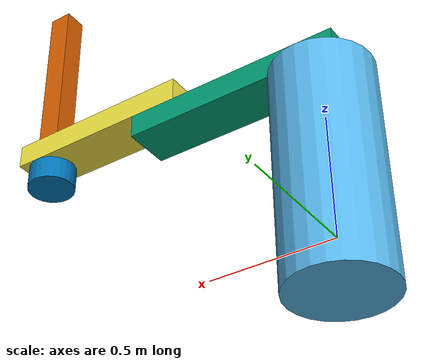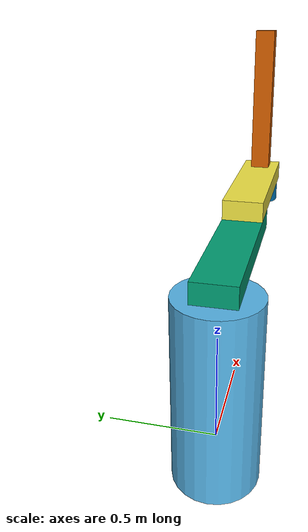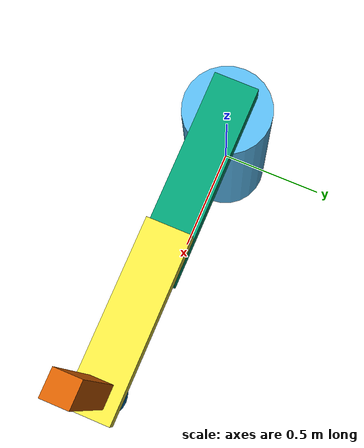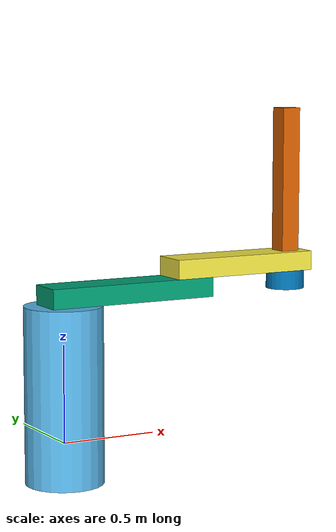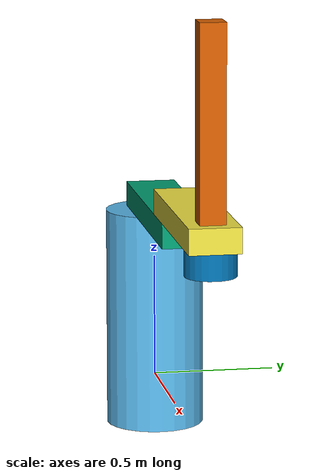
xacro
<?xml version="1.0" ?>

<robot name="robot2" xmlns:xacro="http://www.ros.org/wiki/xacro">
     <!-- Start of robot description -->

    <link name="base_footprint"></link>

    <joint name="base_footprint_joint" type="fixed">
        <origin xyz="0 0 0" rpy="0 0 0" />
        <parent link="base_footprint"/>
        <child link="base_link" />
    </joint>

    <link name ="base_link">
        <visual>
            <origin rpy ="0 0 0 " xyz="0 0 0.25"/>
            <geometry>
                <cylinder radius="0.2" length="0.9"/>
            </geometry>
        </visual>
    </link>

    <joint name="J_0" type ="revolute">
        <axis xyz="0 0 1"/>
        <limit effort="1000.0" lower="-3.14" upper="3.14" velocity = "0.5"/>
        <origin rpy="0 0 0" xyz="0 0 0.5"/>
        <parent link="base_link"/>
        <child link="link_01"/>
    </joint>

    <link name = "link_01">
        <visual>
            <origin rpy = "0 0 0" xyz="0.35 0 0.25"/>
            <geometry>
                <box size="0.9 0.2 0.1"/>
            </geometry>
        </visual>
    </link>

    <joint name="J_1" type ="revolute">
        <axis xyz="0 0 1"/>
        <limit effort="1000.0" lower="-3.14" upper="3.14" velocity="0.5"/>
        <origin rpy="0 0 0" xyz="0.7 0 0.15"/>
        <parent link="link_01"/>
        <child link="link_02"/>
    </joint>

    <link name = "link_02">
        <visual>
            <origin rpy = "0 0 0 " xyz="0.3 0 0.2"/>
            <geometry>
                <box size="0.8 0.2 0.1"/>
            </geometry>
        </visual>
    </link>

    <joint name="J_2" type ="revolute">
        <axis xyz="0 0 1"/>
        <limit effort="1000.0" lower="-3.14" upper="3.14" velocity = "0.5"/>
        <origin rpy="0 0 0" xyz="0.6 0 -0.1"/>
        <parent link="link_02"/>
        <child link="link_03"/>
    </joint>

    <link name = "link_03">
        <visual>
            <origin rpy = "0 0 0" xyz="0 0 0.2"/>
            <geometry>
                <cylinder radius="0.1" length="0.1"/>
            </geometry>
        </visual>
    </link>

    <joint name="J_3" type ="prismatic">
        <axis xyz="0 0 1"/>
        <limit effort="1000.0" lower="-0.8" upper="0" velocity = "0.5"/>
        <origin rpy="0 0 0" xyz="0 0 0.7"/>
        <parent link="link_03"/>
        <child link="link_04"/>
    </joint>

    <link name = "link_04">
        <visual>
            <origin rpy = "0 0 0" xyz="0 0 0"/>
            <geometry>
                <box size="0.1 0.1 0.8"/>
            </geometry>
        </visual>
    </link>

</robot>
